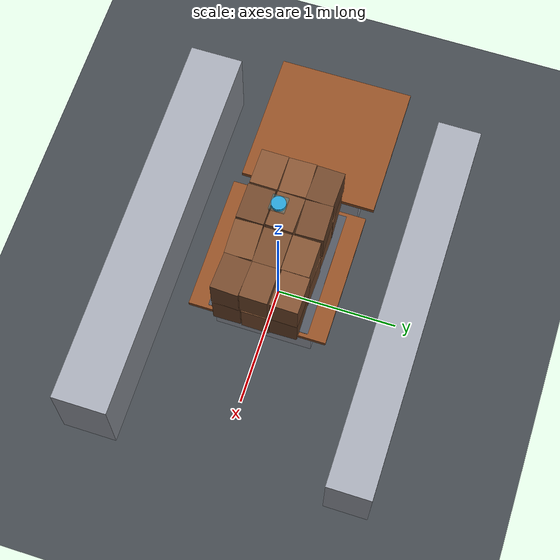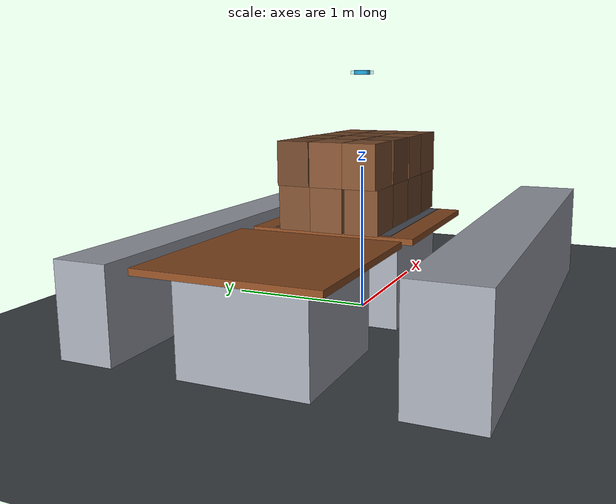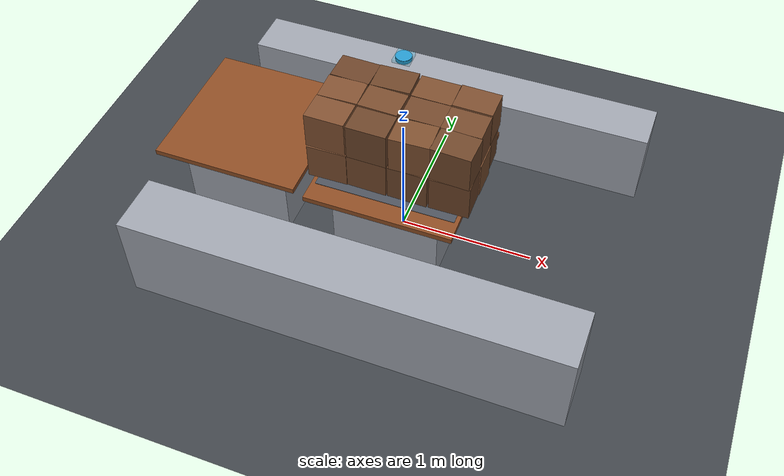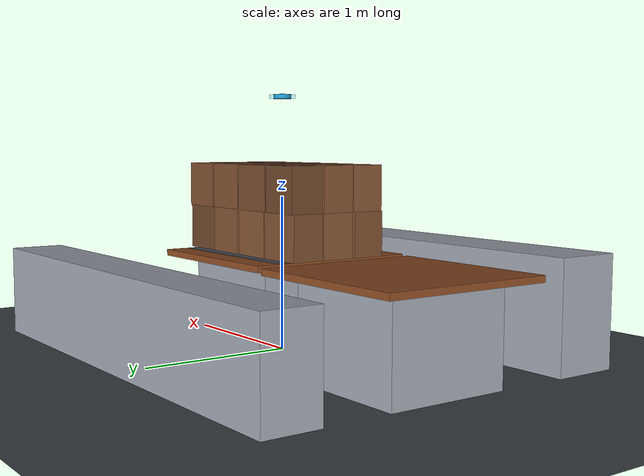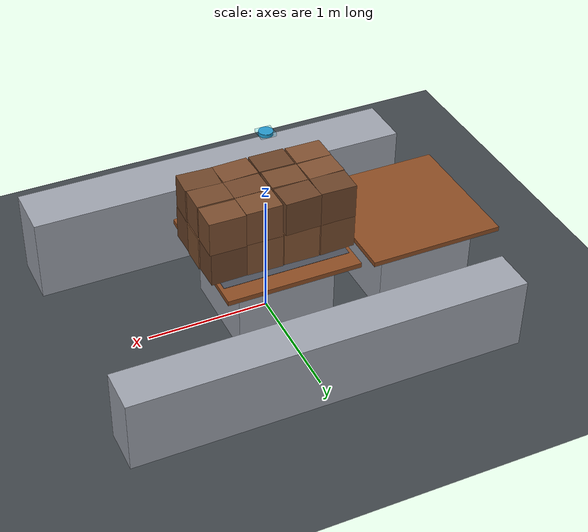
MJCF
<mujoco model="depal_cell">
  <compiler angle="degree" autolimits="true"/>
  <option timestep="0.002" gravity="0 0 -9.81" integrator="implicitfast"/>
  <visual>
    <headlight diffuse="0.5 0.5 0.5" ambient="0.35 0.35 0.35" specular="0.1 0.1 0.1"/>
    <global offwidth="640" offheight="480"/>
    <quality offsamples="4"/>
  </visual>
  <asset>
    <texture name="grid" type="2d" builtin="checker" width="256" height="256"
             rgb1="0.22 0.24 0.26" rgb2="0.28 0.30 0.32"/>
    <material name="floor" texture="grid" texrepeat="8 8" reflectance="0.02"/>
    <material name="deck" rgba="0.55 0.30 0.14 1" reflectance="0.02"/>
    <material name="tier" rgba="0.30 0.32 0.36 1" reflectance="0.01"/>
    <material name="steel" rgba="0.62 0.64 0.68 1" reflectance="0.05"/>
    <material name="card0" rgba="0.484 0.305 0.184 1" reflectance="0.02"/>
    <material name="card1" rgba="0.447 0.282 0.170 1" reflectance="0.02"/>
    <material name="card2" rgba="0.424 0.267 0.161 1" reflectance="0.02"/>
    <material name="card3" rgba="0.422 0.266 0.160 1" reflectance="0.02"/>
    <material name="card4" rgba="0.501 0.316 0.191 1" reflectance="0.02"/>
    <material name="card5" rgba="0.511 0.322 0.194 1" reflectance="0.02"/>
    <material name="card6" rgba="0.481 0.303 0.183 1" reflectance="0.02"/>
    <material name="card7" rgba="0.493 0.311 0.187 1" reflectance="0.02"/>
    <material name="card8" rgba="0.474 0.299 0.180 1" reflectance="0.02"/>
    <material name="card9" rgba="0.514 0.324 0.195 1" reflectance="0.02"/>
    <material name="card10" rgba="0.502 0.316 0.191 1" reflectance="0.02"/>
    <material name="card11" rgba="0.420 0.265 0.160 1" reflectance="0.02"/>
    <material name="card12" rgba="0.506 0.319 0.192 1" reflectance="0.02"/>
    <material name="card13" rgba="0.423 0.267 0.161 1" reflectance="0.02"/>
    <material name="card14" rgba="0.493 0.311 0.187 1" reflectance="0.02"/>
    <material name="card15" rgba="0.438 0.276 0.166 1" reflectance="0.02"/>
    <material name="card16" rgba="0.506 0.319 0.192 1" reflectance="0.02"/>
    <material name="card17" rgba="0.474 0.299 0.180 1" reflectance="0.02"/>
    <material name="card18" rgba="0.450 0.283 0.171 1" reflectance="0.02"/>
    <material name="card19" rgba="0.462 0.291 0.176 1" reflectance="0.02"/>
    <material name="card20" rgba="0.423 0.266 0.161 1" reflectance="0.02"/>
    <material name="card21" rgba="0.432 0.272 0.164 1" reflectance="0.02"/>
    <material name="card22" rgba="0.487 0.307 0.185 1" reflectance="0.02"/>
    <material name="card23" rgba="0.485 0.305 0.184 1" reflectance="0.02"/>
  </asset>

  <worldbody>
    <light pos="0 0 4.0" dir="0 0 -1" diffuse="0.9 0.9 0.9" specular="0.15 0.15 0.15"/>
    <light pos="1.2 1.0 3.4" dir="-0.3 -0.25 -1" diffuse="0.35 0.35 0.35"/>
    <geom name="floor" type="plane" size="6 6 0.05" material="floor"/>
    <camera name="tof" pos="0 0 4.1830" quat="1 0 0 0" fovy="49.8030"/>
    <geom name="deck_src" type="box" pos="0 0 0.6230" size="0.55 0.55 0.0200" material="deck"/>
    <geom name="lift_src" type="box" pos="0 0 0.3015" size="0.40 0.40 0.3015" material="steel"/>
    <geom name="deck_dst" type="box" pos="-1.1914 0.0383 0.6230" size="0.55 0.55 0.0200" material="deck"/>
    <geom name="lift_dst" type="box" pos="-1.1914 0.0383 0.3015" size="0.40 0.40 0.3015" material="steel"/>
    <geom name="tier_src" type="box" pos="0 0 0.6450" size="0.52 0.40 0.002" material="tier"/>
    <geom name="conv_l" type="box" pos="0 -1.05 0.35" size="1.6 0.22 0.35" material="steel"/>
    <geom name="conv_r" type="box" pos="0 1.05 0.30" size="1.6 0.18 0.30" material="steel"/>
    <body name="box0" pos="-0.44962 -0.22797 0.79000" euler="0 0 1.084">
      <freejoint name="box0_j"/>
      <geom name="box0_g" type="box" size="0.1465 0.1095 0.1415" mass="6.0" material="card0" friction="0.9 0.02 0.001" solref="0.004 1" solimp="0.95 0.99 0.001"/>
    </body>
    <body name="box1" pos="-0.15183 -0.22412 0.79000" euler="0 0 -1.106">
      <freejoint name="box1_j"/>
      <geom name="box1_g" type="box" size="0.1465 0.1095 0.1415" mass="6.0" material="card1" friction="0.9 0.02 0.001" solref="0.004 1" solimp="0.95 0.99 0.001"/>
    </body>
    <body name="box2" pos="0.14916 -0.22564 0.79000" euler="0 0 -1.212">
      <freejoint name="box2_j"/>
      <geom name="box2_g" type="box" size="0.1465 0.1095 0.1415" mass="6.0" material="card2" friction="0.9 0.02 0.001" solref="0.004 1" solimp="0.95 0.99 0.001"/>
    </body>
    <body name="box3" pos="0.45086 -0.22358 0.79000" euler="0 0 0.649">
      <freejoint name="box3_j"/>
      <geom name="box3_g" type="box" size="0.1465 0.1095 0.1415" mass="6.0" material="card3" friction="0.9 0.02 0.001" solref="0.004 1" solimp="0.95 0.99 0.001"/>
    </body>
    <body name="box4" pos="-0.45052 0.00314 0.79000" euler="0 0 -0.785">
      <freejoint name="box4_j"/>
      <geom name="box4_g" type="box" size="0.1465 0.1095 0.1415" mass="6.0" material="card4" friction="0.9 0.02 0.001" solref="0.004 1" solimp="0.95 0.99 0.001"/>
    </body>
    <body name="box5" pos="-0.15504 0.00606 0.79000" euler="0 0 1.792">
      <freejoint name="box5_j"/>
      <geom name="box5_g" type="box" size="0.1465 0.1095 0.1415" mass="6.0" material="card5" friction="0.9 0.02 0.001" solref="0.004 1" solimp="0.95 0.99 0.001"/>
    </body>
    <body name="box6" pos="0.15313 0.00106 0.79000" euler="0 0 1.615">
      <freejoint name="box6_j"/>
      <geom name="box6_g" type="box" size="0.1465 0.1095 0.1415" mass="6.0" material="card6" friction="0.9 0.02 0.001" solref="0.004 1" solimp="0.95 0.99 0.001"/>
    </body>
    <body name="box7" pos="0.45583 0.00784 0.79000" euler="0 0 -0.377">
      <freejoint name="box7_j"/>
      <geom name="box7_g" type="box" size="0.1465 0.1095 0.1415" mass="6.0" material="card7" friction="0.9 0.02 0.001" solref="0.004 1" solimp="0.95 0.99 0.001"/>
    </body>
    <body name="box8" pos="-0.44474 0.22643 0.79000" euler="0 0 2.162">
      <freejoint name="box8_j"/>
      <geom name="box8_g" type="box" size="0.1465 0.1095 0.1415" mass="6.0" material="card8" friction="0.9 0.02 0.001" solref="0.004 1" solimp="0.95 0.99 0.001"/>
    </body>
    <body name="box9" pos="-0.15002 0.22763 0.79000" euler="0 0 -1.450">
      <freejoint name="box9_j"/>
      <geom name="box9_g" type="box" size="0.1465 0.1095 0.1415" mass="6.0" material="card9" friction="0.9 0.02 0.001" solref="0.004 1" solimp="0.95 0.99 0.001"/>
    </body>
    <body name="box10" pos="0.15158 0.22672 0.79000" euler="0 0 -1.546">
      <freejoint name="box10_j"/>
      <geom name="box10_g" type="box" size="0.1465 0.1095 0.1415" mass="6.0" material="card10" friction="0.9 0.02 0.001" solref="0.004 1" solimp="0.95 0.99 0.001"/>
    </body>
    <body name="box11" pos="0.44526 0.22235 0.79000" euler="0 0 0.835">
      <freejoint name="box11_j"/>
      <geom name="box11_g" type="box" size="0.1465 0.1095 0.1415" mass="6.0" material="card11" friction="0.9 0.02 0.001" solref="0.004 1" solimp="0.95 0.99 0.001"/>
    </body>
    <body name="box12" pos="-0.45468 -0.21804 1.07300" euler="0 0 -0.524">
      <freejoint name="box12_j"/>
      <geom name="box12_g" type="box" size="0.1465 0.1095 0.1415" mass="6.0" material="card12" friction="0.9 0.02 0.001" solref="0.004 1" solimp="0.95 0.99 0.001"/>
    </body>
    <body name="box13" pos="-0.14868 -0.22603 1.07300" euler="0 0 -0.595">
      <freejoint name="box13_j"/>
      <geom name="box13_g" type="box" size="0.1465 0.1095 0.1415" mass="6.0" material="card13" friction="0.9 0.02 0.001" solref="0.004 1" solimp="0.95 0.99 0.001"/>
    </body>
    <body name="box14" pos="0.15528 -0.22247 1.07300" euler="0 0 1.900">
      <freejoint name="box14_j"/>
      <geom name="box14_g" type="box" size="0.1465 0.1095 0.1415" mass="6.0" material="card14" friction="0.9 0.02 0.001" solref="0.004 1" solimp="0.95 0.99 0.001"/>
    </body>
    <body name="box15" pos="0.45021 -0.22227 1.07300" euler="0 0 -2.644">
      <freejoint name="box15_j"/>
      <geom name="box15_g" type="box" size="0.1465 0.1095 0.1415" mass="6.0" material="card15" friction="0.9 0.02 0.001" solref="0.004 1" solimp="0.95 0.99 0.001"/>
    </body>
    <body name="box16" pos="-0.45247 0.00729 1.07300" euler="0 0 1.205">
      <freejoint name="box16_j"/>
      <geom name="box16_g" type="box" size="0.1465 0.1095 0.1415" mass="6.0" material="card16" friction="0.9 0.02 0.001" solref="0.004 1" solimp="0.95 0.99 0.001"/>
    </body>
    <body name="box17" pos="-0.15265 0.00374 1.07300" euler="0 0 -1.585">
      <freejoint name="box17_j"/>
      <geom name="box17_g" type="box" size="0.1465 0.1095 0.1415" mass="6.0" material="card17" friction="0.9 0.02 0.001" solref="0.004 1" solimp="0.95 0.99 0.001"/>
    </body>
    <body name="box18" pos="0.15801 0.00075 1.07300" euler="0 0 0.059">
      <freejoint name="box18_j"/>
      <geom name="box18_g" type="box" size="0.1465 0.1095 0.1415" mass="6.0" material="card18" friction="0.9 0.02 0.001" solref="0.004 1" solimp="0.95 0.99 0.001"/>
    </body>
    <body name="box19" pos="0.44849 -0.00436 1.07300" euler="0 0 -0.760">
      <freejoint name="box19_j"/>
      <geom name="box19_g" type="box" size="0.1465 0.1095 0.1415" mass="6.0" material="card19" friction="0.9 0.02 0.001" solref="0.004 1" solimp="0.95 0.99 0.001"/>
    </body>
    <body name="box20" pos="-0.44748 0.22732 1.07300" euler="0 0 -1.533">
      <freejoint name="box20_j"/>
      <geom name="box20_g" type="box" size="0.1465 0.1095 0.1415" mass="6.0" material="card20" friction="0.9 0.02 0.001" solref="0.004 1" solimp="0.95 0.99 0.001"/>
    </body>
    <body name="box21" pos="-0.15302 0.23176 1.07300" euler="0 0 1.553">
      <freejoint name="box21_j"/>
      <geom name="box21_g" type="box" size="0.1465 0.1095 0.1415" mass="6.0" material="card21" friction="0.9 0.02 0.001" solref="0.004 1" solimp="0.95 0.99 0.001"/>
    </body>
    <body name="box22" pos="0.15630 0.22327 1.07300" euler="0 0 -0.345">
      <freejoint name="box22_j"/>
      <geom name="box22_g" type="box" size="0.1465 0.1095 0.1415" mass="6.0" material="card22" friction="0.9 0.02 0.001" solref="0.004 1" solimp="0.95 0.99 0.001"/>
    </body>
    <body name="box23" pos="0.45100 0.22913 1.07300" euler="0 0 -0.883">
      <freejoint name="box23_j"/>
      <geom name="box23_g" type="box" size="0.1465 0.1095 0.1415" mass="6.0" material="card23" friction="0.9 0.02 0.001" solref="0.004 1" solimp="0.95 0.99 0.001"/>
    </body>
    <body name="suction_target" pos="0 0 1.6430" quat="1 0 0 0" mocap="true">
      <geom name="mocap_viz" type="box" size="0.06 0.06 0.012" rgba="0.1 0.7 0.9 0.25" contype="0" conaffinity="0"/>
    </body>
    <body name="suction" pos="0 0 1.6430">
      <freejoint name="suction_j"/>
      <geom name="suction_g" type="cylinder" size="0.055 0.015" mass="1.2" rgba="0.15 0.6 0.8 1"
            contype="2" conaffinity="1" friction="1.2 0.02 0.001"/>
    </body>
  </worldbody>

  <equality>
    <weld name="ee_mocap" body1="suction" body2="suction_target" solref="0.01 1" solimp="0.95 0.99 0.001"/>
    <weld name="grip0" body1="suction" body2="box0" active="false" solref="0.006 1" solimp="0.97 0.99 0.001"/>
    <weld name="grip1" body1="suction" body2="box1" active="false" solref="0.006 1" solimp="0.97 0.99 0.001"/>
    <weld name="grip2" body1="suction" body2="box2" active="false" solref="0.006 1" solimp="0.97 0.99 0.001"/>
    <weld name="grip3" body1="suction" body2="box3" active="false" solref="0.006 1" solimp="0.97 0.99 0.001"/>
    <weld name="grip4" body1="suction" body2="box4" active="false" solref="0.006 1" solimp="0.97 0.99 0.001"/>
    <weld name="grip5" body1="suction" body2="box5" active="false" solref="0.006 1" solimp="0.97 0.99 0.001"/>
    <weld name="grip6" body1="suction" body2="box6" active="false" solref="0.006 1" solimp="0.97 0.99 0.001"/>
    <weld name="grip7" body1="suction" body2="box7" active="false" solref="0.006 1" solimp="0.97 0.99 0.001"/>
    <weld name="grip8" body1="suction" body2="box8" active="false" solref="0.006 1" solimp="0.97 0.99 0.001"/>
    <weld name="grip9" body1="suction" body2="box9" active="false" solref="0.006 1" solimp="0.97 0.99 0.001"/>
    <weld name="grip10" body1="suction" body2="box10" active="false" solref="0.006 1" solimp="0.97 0.99 0.001"/>
    <weld name="grip11" body1="suction" body2="box11" active="false" solref="0.006 1" solimp="0.97 0.99 0.001"/>
    <weld name="grip12" body1="suction" body2="box12" active="false" solref="0.006 1" solimp="0.97 0.99 0.001"/>
    <weld name="grip13" body1="suction" body2="box13" active="false" solref="0.006 1" solimp="0.97 0.99 0.001"/>
    <weld name="grip14" body1="suction" body2="box14" active="false" solref="0.006 1" solimp="0.97 0.99 0.001"/>
    <weld name="grip15" body1="suction" body2="box15" active="false" solref="0.006 1" solimp="0.97 0.99 0.001"/>
    <weld name="grip16" body1="suction" body2="box16" active="false" solref="0.006 1" solimp="0.97 0.99 0.001"/>
    <weld name="grip17" body1="suction" body2="box17" active="false" solref="0.006 1" solimp="0.97 0.99 0.001"/>
    <weld name="grip18" body1="suction" body2="box18" active="false" solref="0.006 1" solimp="0.97 0.99 0.001"/>
    <weld name="grip19" body1="suction" body2="box19" active="false" solref="0.006 1" solimp="0.97 0.99 0.001"/>
    <weld name="grip20" body1="suction" body2="box20" active="false" solref="0.006 1" solimp="0.97 0.99 0.001"/>
    <weld name="grip21" body1="suction" body2="box21" active="false" solref="0.006 1" solimp="0.97 0.99 0.001"/>
    <weld name="grip22" body1="suction" body2="box22" active="false" solref="0.006 1" solimp="0.97 0.99 0.001"/>
    <weld name="grip23" body1="suction" body2="box23" active="false" solref="0.006 1" solimp="0.97 0.99 0.001"/>
  </equality>
</mujoco>
